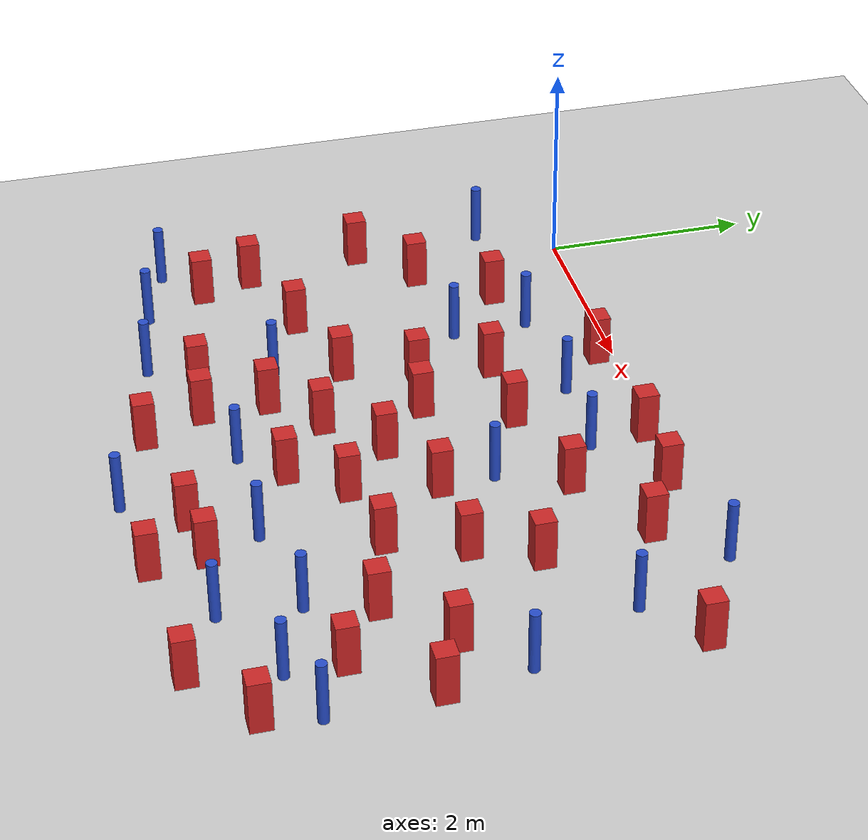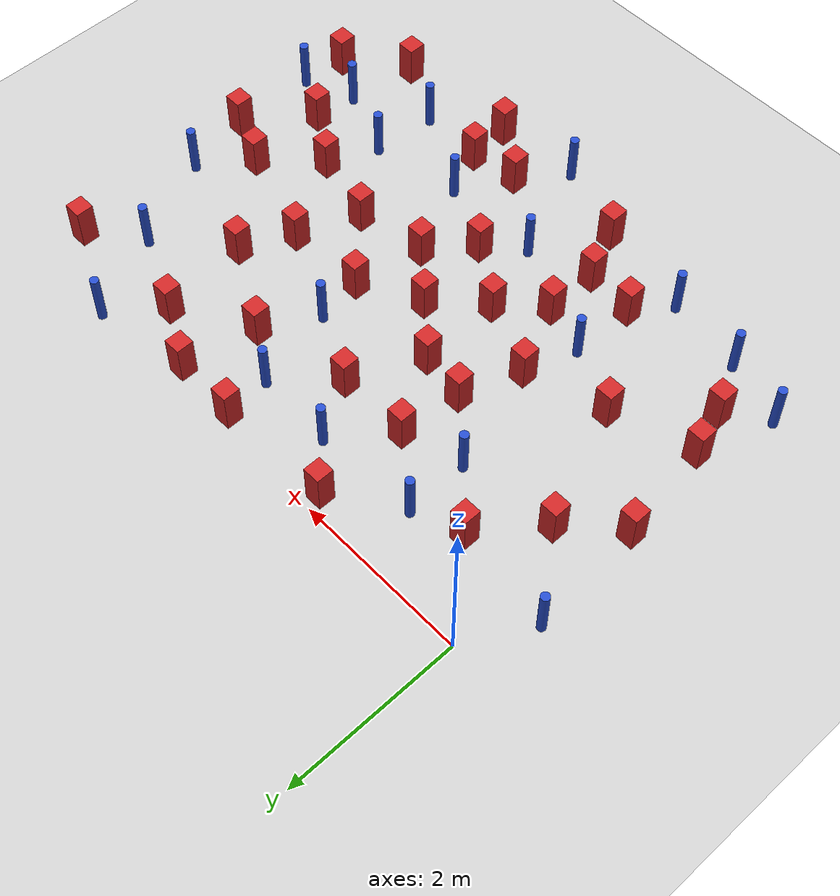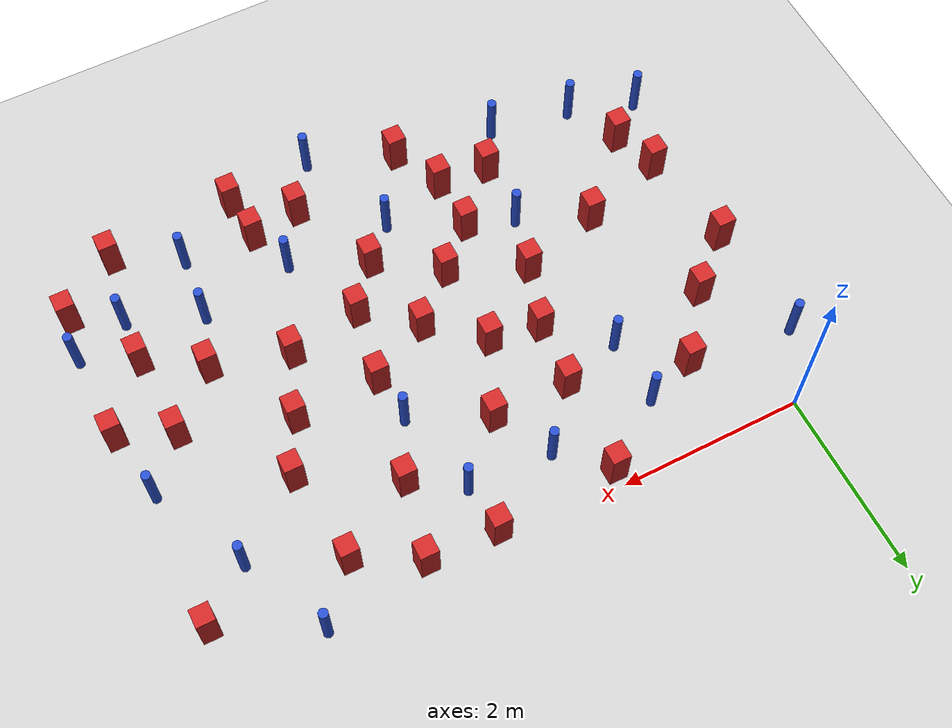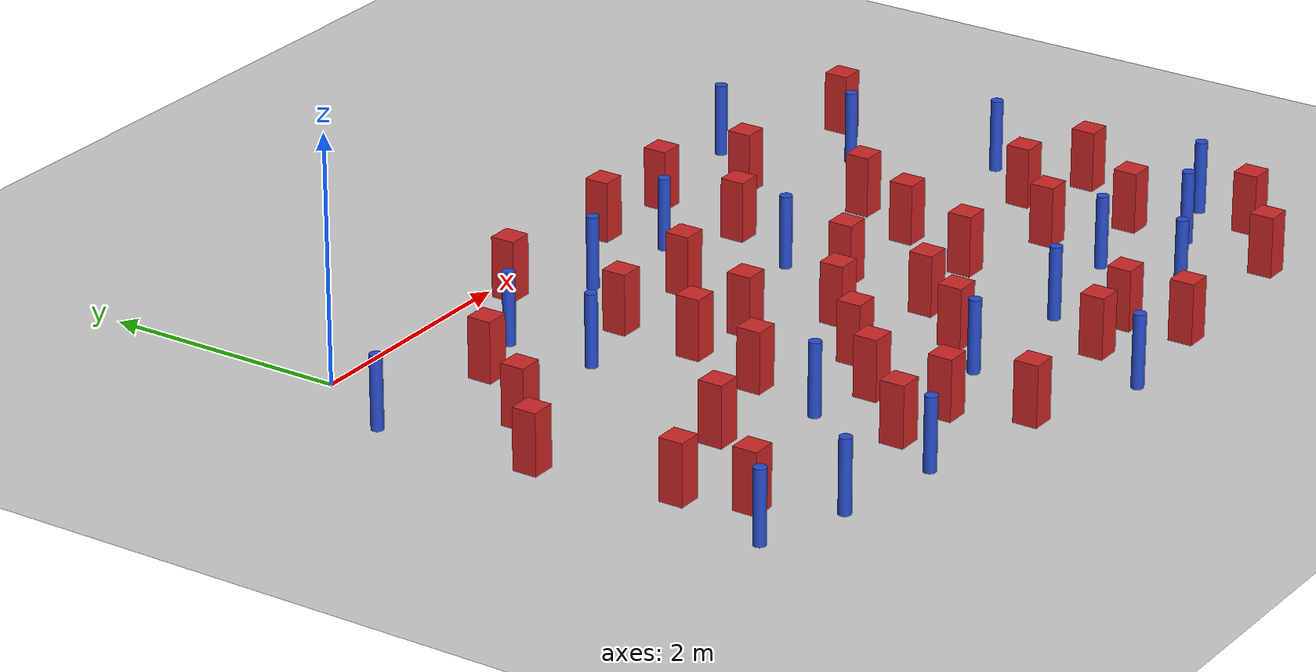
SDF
<sdf version="1.6">
 <world name="default">
  <model name="ground_plane">
   <static>1</static>
   <link name="link">
    <collision name="collision">
     <geometry><plane><normal>0 0 1</normal><size>100 100</size></plane></geometry>
     <surface><friction><ode><mu>100</mu><mu2>50</mu2></ode></friction></surface>
    </collision>
    <visual name="visual">
     <cast_shadows>0</cast_shadows>
     <geometry><plane><normal>0 0 1</normal><size>100 100</size></plane></geometry>
     <material>
      <ambient>1.0 1.0 1.0 1.0</ambient>
      <diffuse>0.8 0.8 0.8 1.0</diffuse>
      <specular>0.01 0.01 0.01 1.000000</specular>
     </material>
    </visual>
   </link>
  </model>
  <model name="NamedLocations">
   <static>true</static>
   <link name="DefaultStart"><pose>8.5 0 0 0 0 3.14</pose></link>
  </model>
  <model name="pole_obstacle8">
   <static>true</static>
   <pose>2.49458877302 -0.618679551614 -2.66029137441e-07 -5.69430205624e-07 6.8412996657e-07 -8.68349370746e-08</pose>
   <link name="link">
    <pose>0 0 0.3 0 -0 0</pose>
    <inertial>
     <mass>1</mass>
     <inertia><ixx>0.145833</ixx><ixy>0</ixy><ixz>0</ixz><iyy>0.145833</iyy><iyz>0</iyz><izz>0.125</izz></inertia>
    </inertial>
    <collision name="collision">
     <geometry><cylinder><radius>0.05</radius><length>.6</length></cylinder></geometry>
    </collision>
    <visual name="visual">
     <geometry><cylinder><radius>0.05</radius><length>.6</length></cylinder></geometry>
     <material>
      <script><name>Gazebo/Blue</name><uri>file://media/materials/scripts/gazebo.material</uri></script>
     </material>
    </visual>
   </link>
  </model>
  <model name="square_post_obstacle7">
   <static>true</static>
   <pose>5.61535277145 -4.75521165374 -7.80171244635e-07 7.17449752808e-06 -5.6639232126e-07 2.2715510512e-05</pose>
   <link name="link">
    <pose>0 0 0.25 0 -0 0</pose>
    <inertial>
     <mass>100</mass>
     <inertia>
      <ixx>0.166667</ixx>
      <ixy>0</ixy>
      <ixz>0</ixz>
      <iyy>0.166667</iyy>
      <iyz>0</iyz>
      <izz>0.166667</izz>
     </inertia>
    </inertial>
    <collision name="collision"><geometry><box><size>.2 .2 .5</size></box></geometry></collision>
    <visual name="visual">
     <geometry><box><size>.2 .2 .5</size></box></geometry>
     <material>
      <script><name>Gazebo/Red</name><uri>file://media/materials/scripts/gazebo.material</uri></script>
     </material>
    </visual>
   </link>
  </model>
  <model name="pole_obstacle11">
   <static>true</static>
   <pose>5.25460463 0.0208689462989 -2.66029137441e-07 -5.69430205622e-07 6.84129966572e-07 -8.68349370728e-08</pose>
   <link name="link">
    <pose>0 0 0.3 0 -0 0</pose>
    <inertial>
     <mass>1</mass>
     <inertia><ixx>0.145833</ixx><ixy>0</ixy><ixz>0</ixz><iyy>0.145833</iyy><iyz>0</iyz><izz>0.125</izz></inertia>
    </inertial>
    <collision name="collision">
     <geometry><cylinder><radius>0.05</radius><length>.6</length></cylinder></geometry>
    </collision>
    <visual name="visual">
     <geometry><cylinder><radius>0.05</radius><length>.6</length></cylinder></geometry>
     <material>
      <script><name>Gazebo/Blue</name><uri>file://media/materials/scripts/gazebo.material</uri></script>
     </material>
    </visual>
   </link>
  </model>
  <model name="pole_obstacle12">
   <static>true</static>
   <pose>5.76693868843 -3.97918718534 -2.66029137441e-07 -5.69430205639e-07 6.84129966552e-07 -8.68349370846e-08</pose>
   <link name="link">
    <pose>0 0 0.3 0 -0 0</pose>
    <inertial>
     <mass>1</mass>
     <inertia><ixx>0.145833</ixx><ixy>0</ixy><ixz>0</ixz><iyy>0.145833</iyy><iyz>0</iyz><izz>0.125</izz></inertia>
    </inertial>
    <collision name="collision">
     <geometry><cylinder><radius>0.05</radius><length>.6</length></cylinder></geometry>
    </collision>
    <visual name="visual">
     <geometry><cylinder><radius>0.05</radius><length>.6</length></cylinder></geometry>
     <material>
      <script><name>Gazebo/Blue</name><uri>file://media/materials/scripts/gazebo.material</uri></script>
     </material>
    </visual>
   </link>
  </model>
  <model name="square_post_obstacle8">
   <static>true</static>
   <pose>-0.32956075323 -2.03776526633 -7.80171244635e-07 7.17449752808e-06 -5.6639232126e-07 2.2715510512e-05</pose>
   <link name="link">
    <pose>0 0 0.25 0 -0 0</pose>
    <inertial>
     <mass>100</mass>
     <inertia>
      <ixx>0.166667</ixx>
      <ixy>0</ixy>
      <ixz>0</ixz>
      <iyy>0.166667</iyy>
      <iyz>0</iyz>
      <izz>0.166667</izz>
     </inertia>
    </inertial>
    <collision name="collision"><geometry><box><size>.2 .2 .5</size></box></geometry></collision>
    <visual name="visual">
     <geometry><box><size>.2 .2 .5</size></box></geometry>
     <material>
      <script><name>Gazebo/Red</name><uri>file://media/materials/scripts/gazebo.material</uri></script>
     </material>
    </visual>
   </link>
  </model>
  <model name="pole_obstacle15">
   <static>true</static>
   <pose>4.98668080263 -3.65906359075 -2.66029137441e-07 -5.69430205643e-07 6.84129966548e-07 -8.68349370881e-08</pose>
   <link name="link">
    <pose>0 0 0.3 0 -0 0</pose>
    <inertial>
     <mass>1</mass>
     <inertia><ixx>0.145833</ixx><ixy>0</ixy><ixz>0</ixz><iyy>0.145833</iyy><iyz>0</iyz><izz>0.125</izz></inertia>
    </inertial>
    <collision name="collision">
     <geometry><cylinder><radius>0.05</radius><length>.6</length></cylinder></geometry>
    </collision>
    <visual name="visual">
     <geometry><cylinder><radius>0.05</radius><length>.6</length></cylinder></geometry>
     <material>
      <script><name>Gazebo/Blue</name><uri>file://media/materials/scripts/gazebo.material</uri></script>
     </material>
    </visual>
   </link>
  </model>
  <model name="square_post_obstacle12">
   <static>true</static>
   <pose>2.04868826181 -3.39985556791 -7.80171244635e-07 7.17449752808e-06 -5.6639232126e-07 2.2715510512e-05</pose>
   <link name="link">
    <pose>0 0 0.25 0 -0 0</pose>
    <inertial>
     <mass>100</mass>
     <inertia>
      <ixx>0.166667</ixx>
      <ixy>0</ixy>
      <ixz>0</ixz>
      <iyy>0.166667</iyy>
      <iyz>0</iyz>
      <izz>0.166667</izz>
     </inertia>
    </inertial>
    <collision name="collision"><geometry><box><size>.2 .2 .5</size></box></geometry></collision>
    <visual name="visual">
     <geometry><box><size>.2 .2 .5</size></box></geometry>
     <material>
      <script><name>Gazebo/Red</name><uri>file://media/materials/scripts/gazebo.material</uri></script>
     </material>
    </visual>
   </link>
  </model>
  <model name="pole_obstacle28">
   <static>true</static>
   <pose>3.24130687064 -4.95791871969 -2.66029137441e-07 -5.69430205635e-07 6.84129966557e-07 -8.68349370832e-08</pose>
   <link name="link">
    <pose>0 0 0.3 0 -0 0</pose>
    <inertial>
     <mass>1</mass>
     <inertia><ixx>0.145833</ixx><ixy>0</ixy><ixz>0</ixz><iyy>0.145833</iyy><iyz>0</iyz><izz>0.125</izz></inertia>
    </inertial>
    <collision name="collision">
     <geometry><cylinder><radius>0.05</radius><length>.6</length></cylinder></geometry>
    </collision>
    <visual name="visual">
     <geometry><cylinder><radius>0.05</radius><length>.6</length></cylinder></geometry>
     <material>
      <script><name>Gazebo/Blue</name><uri>file://media/materials/scripts/gazebo.material</uri></script>
     </material>
    </visual>
   </link>
  </model>
  <model name="square_post_obstacle19">
   <static>true</static>
   <pose>3.16327812657 -3.4459845942 -7.80171244635e-07 7.17449752808e-06 -5.6639232126e-07 2.2715510512e-05</pose>
   <link name="link">
    <pose>0 0 0.25 0 -0 0</pose>
    <inertial>
     <mass>100</mass>
     <inertia>
      <ixx>0.166667</ixx>
      <ixy>0</ixy>
      <ixz>0</ixz>
      <iyy>0.166667</iyy>
      <iyz>0</iyz>
      <izz>0.166667</izz>
     </inertia>
    </inertial>
    <collision name="collision"><geometry><box><size>.2 .2 .5</size></box></geometry></collision>
    <visual name="visual">
     <geometry><box><size>.2 .2 .5</size></box></geometry>
     <material>
      <script><name>Gazebo/Red</name><uri>file://media/materials/scripts/gazebo.material</uri></script>
     </material>
    </visual>
   </link>
  </model>
  <model name="square_post_obstacle21">
   <static>true</static>
   <pose>0.749415163768 -0.872730538576 -7.80171244635e-07 7.17449752808e-06 -5.6639232126e-07 2.2715510512e-05</pose>
   <link name="link">
    <pose>0 0 0.25 0 -0 0</pose>
    <inertial>
     <mass>100</mass>
     <inertia>
      <ixx>0.166667</ixx>
      <ixy>0</ixy>
      <ixz>0</ixz>
      <iyy>0.166667</iyy>
      <iyz>0</iyz>
      <izz>0.166667</izz>
     </inertia>
    </inertial>
    <collision name="collision"><geometry><box><size>.2 .2 .5</size></box></geometry></collision>
    <visual name="visual">
     <geometry><box><size>.2 .2 .5</size></box></geometry>
     <material>
      <script><name>Gazebo/Red</name><uri>file://media/materials/scripts/gazebo.material</uri></script>
     </material>
    </visual>
   </link>
  </model>
  <model name="square_post_obstacle23">
   <static>true</static>
   <pose>3.55069133112 -2.95792109171 -7.80171244635e-07 7.17449752808e-06 -5.6639232126e-07 2.2715510512e-05</pose>
   <link name="link">
    <pose>0 0 0.25 0 -0 0</pose>
    <inertial>
     <mass>100</mass>
     <inertia>
      <ixx>0.166667</ixx>
      <ixy>0</ixy>
      <ixz>0</ixz>
      <iyy>0.166667</iyy>
      <iyz>0</iyz>
      <izz>0.166667</izz>
     </inertia>
    </inertial>
    <collision name="collision"><geometry><box><size>.2 .2 .5</size></box></geometry></collision>
    <visual name="visual">
     <geometry><box><size>.2 .2 .5</size></box></geometry>
     <material>
      <script><name>Gazebo/Red</name><uri>file://media/materials/scripts/gazebo.material</uri></script>
     </material>
    </visual>
   </link>
  </model>
  <model name="square_post_obstacle24">
   <static>true</static>
   <pose>2.0622243989 -4.02546824933 -7.80171244635e-07 7.17449752808e-06 -5.6639232126e-07 2.2715510512e-05</pose>
   <link name="link">
    <pose>0 0 0.25 0 -0 0</pose>
    <inertial>
     <mass>100</mass>
     <inertia>
      <ixx>0.166667</ixx>
      <ixy>0</ixy>
      <ixz>0</ixz>
      <iyy>0.166667</iyy>
      <iyz>0</iyz>
      <izz>0.166667</izz>
     </inertia>
    </inertial>
    <collision name="collision"><geometry><box><size>.2 .2 .5</size></box></geometry></collision>
    <visual name="visual">
     <geometry><box><size>.2 .2 .5</size></box></geometry>
     <material>
      <script><name>Gazebo/Red</name><uri>file://media/materials/scripts/gazebo.material</uri></script>
     </material>
    </visual>
   </link>
  </model>
  <model name="pole_obstacle33">
   <static>true</static>
   <pose>1.32293642868 -1.41221214317 -2.66029137441e-07 -5.69430205631e-07 6.84129966561e-07 -8.68349370801e-08</pose>
   <link name="link">
    <pose>0 0 0.3 0 -0 0</pose>
    <inertial>
     <mass>1</mass>
     <inertia><ixx>0.145833</ixx><ixy>0</ixy><ixz>0</ixz><iyy>0.145833</iyy><iyz>0</iyz><izz>0.125</izz></inertia>
    </inertial>
    <collision name="collision">
     <geometry><cylinder><radius>0.05</radius><length>.6</length></cylinder></geometry>
    </collision>
    <visual name="visual">
     <geometry><cylinder><radius>0.05</radius><length>.6</length></cylinder></geometry>
     <material>
      <script><name>Gazebo/Blue</name><uri>file://media/materials/scripts/gazebo.material</uri></script>
     </material>
    </visual>
   </link>
  </model>
  <model name="pole_obstacle45">
   <static>true</static>
   <pose>1.51649301916 -3.24312812248 -2.66029137441e-07 -5.69430205634e-07 6.84129966558e-07 -8.68349370806e-08</pose>
   <link name="link">
    <pose>0 0 0.3 0 -0 0</pose>
    <inertial>
     <mass>1</mass>
     <inertia><ixx>0.145833</ixx><ixy>0</ixy><ixz>0</ixz><iyy>0.145833</iyy><iyz>0</iyz><izz>0.125</izz></inertia>
    </inertial>
    <collision name="collision">
     <geometry><cylinder><radius>0.05</radius><length>.6</length></cylinder></geometry>
    </collision>
    <visual name="visual">
     <geometry><cylinder><radius>0.05</radius><length>.6</length></cylinder></geometry>
     <material>
      <script><name>Gazebo/Blue</name><uri>file://media/materials/scripts/gazebo.material</uri></script>
     </material>
    </visual>
   </link>
  </model>
  <model name="square_post_obstacle48">
   <static>true</static>
   <pose>3.69604058583 -2.15092324287 -7.80171244635e-07 7.17449752808e-06 -5.6639232126e-07 2.2715510512e-05</pose>
   <link name="link">
    <pose>0 0 0.25 0 -0 0</pose>
    <inertial>
     <mass>100</mass>
     <inertia>
      <ixx>0.166667</ixx>
      <ixy>0</ixy>
      <ixz>0</ixz>
      <iyy>0.166667</iyy>
      <iyz>0</iyz>
      <izz>0.166667</izz>
     </inertia>
    </inertial>
    <collision name="collision"><geometry><box><size>.2 .2 .5</size></box></geometry></collision>
    <visual name="visual">
     <geometry><box><size>.2 .2 .5</size></box></geometry>
     <material>
      <script><name>Gazebo/Red</name><uri>file://media/materials/scripts/gazebo.material</uri></script>
     </material>
    </visual>
   </link>
  </model>
  <model name="square_post_obstacle51">
   <static>true</static>
   <pose>4.19193821958 -4.84243065034 -7.80171244635e-07 7.17449752808e-06 -5.6639232126e-07 2.2715510512e-05</pose>
   <link name="link">
    <pose>0 0 0.25 0 -0 0</pose>
    <inertial>
     <mass>100</mass>
     <inertia>
      <ixx>0.166667</ixx>
      <ixy>0</ixy>
      <ixz>0</ixz>
      <iyy>0.166667</iyy>
      <iyz>0</iyz>
      <izz>0.166667</izz>
     </inertia>
    </inertial>
    <collision name="collision"><geometry><box><size>.2 .2 .5</size></box></geometry></collision>
    <visual name="visual">
     <geometry><box><size>.2 .2 .5</size></box></geometry>
     <material>
      <script><name>Gazebo/Red</name><uri>file://media/materials/scripts/gazebo.material</uri></script>
     </material>
    </visual>
   </link>
  </model>
  <model name="square_post_obstacle54">
   <static>true</static>
   <pose>5.7511329199 -2.51789486885 -7.80171244635e-07 7.17449752808e-06 -5.6639232126e-07 2.2715510512e-05</pose>
   <link name="link">
    <pose>0 0 0.25 0 -0 0</pose>
    <inertial>
     <mass>100</mass>
     <inertia>
      <ixx>0.166667</ixx>
      <ixy>0</ixy>
      <ixz>0</ixz>
      <iyy>0.166667</iyy>
      <iyz>0</iyz>
      <izz>0.166667</izz>
     </inertia>
    </inertial>
    <collision name="collision"><geometry><box><size>.2 .2 .5</size></box></geometry></collision>
    <visual name="visual">
     <geometry><box><size>.2 .2 .5</size></box></geometry>
     <material>
      <script><name>Gazebo/Red</name><uri>file://media/materials/scripts/gazebo.material</uri></script>
     </material>
    </visual>
   </link>
  </model>
  <model name="pole_obstacle72">
   <static>true</static>
   <pose>3.64295440775 -1.63293300448 -2.66029137441e-07 -5.69430205626e-07 6.84129966567e-07 -8.68349370747e-08</pose>
   <link name="link">
    <pose>0 0 0.3 0 -0 0</pose>
    <inertial>
     <mass>1</mass>
     <inertia><ixx>0.145833</ixx><ixy>0</ixy><ixz>0</ixz><iyy>0.145833</iyy><iyz>0</iyz><izz>0.125</izz></inertia>
    </inertial>
    <collision name="collision">
     <geometry><cylinder><radius>0.05</radius><length>.6</length></cylinder></geometry>
    </collision>
    <visual name="visual">
     <geometry><cylinder><radius>0.05</radius><length>.6</length></cylinder></geometry>
     <material>
      <script><name>Gazebo/Blue</name><uri>file://media/materials/scripts/gazebo.material</uri></script>
     </material>
    </visual>
   </link>
  </model>
  <model name="pole_obstacle73">
   <static>true</static>
   <pose>-0.430172688016 -4.02776832806 -2.66029137441e-07 -5.69430205628e-07 6.84129966564e-07 -8.68349370758e-08</pose>
   <link name="link">
    <pose>0 0 0.3 0 -0 0</pose>
    <inertial>
     <mass>1</mass>
     <inertia><ixx>0.145833</ixx><ixy>0</ixy><ixz>0</ixz><iyy>0.145833</iyy><iyz>0</iyz><izz>0.125</izz></inertia>
    </inertial>
    <collision name="collision">
     <geometry><cylinder><radius>0.05</radius><length>.6</length></cylinder></geometry>
    </collision>
    <visual name="visual">
     <geometry><cylinder><radius>0.05</radius><length>.6</length></cylinder></geometry>
     <material>
      <script><name>Gazebo/Blue</name><uri>file://media/materials/scripts/gazebo.material</uri></script>
     </material>
    </visual>
   </link>
  </model>
  <model name="pole_obstacle75">
   <static>true</static>
   <pose>-0.41496611915 -0.730419255599 -2.66029137441e-07 -5.69430205635e-07 6.84129966557e-07 -8.68349370829e-08</pose>
   <link name="link">
    <pose>0 0 0.3 0 -0 0</pose>
    <inertial>
     <mass>1</mass>
     <inertia><ixx>0.145833</ixx><ixy>0</ixy><ixz>0</ixz><iyy>0.145833</iyy><iyz>0</iyz><izz>0.125</izz></inertia>
    </inertial>
    <collision name="collision">
     <geometry><cylinder><radius>0.05</radius><length>.6</length></cylinder></geometry>
    </collision>
    <visual name="visual">
     <geometry><cylinder><radius>0.05</radius><length>.6</length></cylinder></geometry>
     <material>
      <script><name>Gazebo/Blue</name><uri>file://media/materials/scripts/gazebo.material</uri></script>
     </material>
    </visual>
   </link>
  </model>
  <model name="pole_obstacle77">
   <static>true</static>
   <pose>3.9568642843 -3.83935120377 -2.66029137441e-07 -5.69430205656e-07 6.84129966533e-07 -8.6834937102e-08</pose>
   <link name="link">
    <pose>0 0 0.3 0 -0 0</pose>
    <inertial>
     <mass>1</mass>
     <inertia><ixx>0.145833</ixx><ixy>0</ixy><ixz>0</ixz><iyy>0.145833</iyy><iyz>0</iyz><izz>0.125</izz></inertia>
    </inertial>
    <collision name="collision">
     <geometry><cylinder><radius>0.05</radius><length>.6</length></cylinder></geometry>
    </collision>
    <visual name="visual">
     <geometry><cylinder><radius>0.05</radius><length>.6</length></cylinder></geometry>
     <material>
      <script><name>Gazebo/Blue</name><uri>file://media/materials/scripts/gazebo.material</uri></script>
     </material>
    </visual>
   </link>
  </model>
  <model name="pole_obstacle89">
   <static>true</static>
   <pose>2.79653833348 -3.82423718456 -2.66029137441e-07 -5.69430205643e-07 6.84129966548e-07 -8.68349370903e-08</pose>
   <link name="link">
    <pose>0 0 0.3 0 -0 0</pose>
    <inertial>
     <mass>1</mass>
     <inertia><ixx>0.145833</ixx><ixy>0</ixy><ixz>0</ixz><iyy>0.145833</iyy><iyz>0</iyz><izz>0.125</izz></inertia>
    </inertial>
    <collision name="collision">
     <geometry><cylinder><radius>0.05</radius><length>.6</length></cylinder></geometry>
    </collision>
    <visual name="visual">
     <geometry><cylinder><radius>0.05</radius><length>.6</length></cylinder></geometry>
     <material>
      <script><name>Gazebo/Blue</name><uri>file://media/materials/scripts/gazebo.material</uri></script>
     </material>
    </visual>
   </link>
  </model>
  <model name="square_post_obstacle82">
   <static>true</static>
   <pose>4.3499655331 -2.82000378812 -7.80171244635e-07 7.17449752808e-06 -5.6639232126e-07 2.2715510512e-05</pose>
   <link name="link">
    <pose>0 0 0.25 0 -0 0</pose>
    <inertial>
     <mass>100</mass>
     <inertia>
      <ixx>0.166667</ixx>
      <ixy>0</ixy>
      <ixz>0</ixz>
      <iyy>0.166667</iyy>
      <iyz>0</iyz>
      <izz>0.166667</izz>
     </inertia>
    </inertial>
    <collision name="collision"><geometry><box><size>.2 .2 .5</size></box></geometry></collision>
    <visual name="visual">
     <geometry><box><size>.2 .2 .5</size></box></geometry>
     <material>
      <script><name>Gazebo/Red</name><uri>file://media/materials/scripts/gazebo.material</uri></script>
     </material>
    </visual>
   </link>
  </model>
  <model name="square_post_obstacle84">
   <static>true</static>
   <pose>0.777640071251 -2.88531394035 -7.80171244635e-07 7.17449752808e-06 -5.6639232126e-07 2.2715510512e-05</pose>
   <link name="link">
    <pose>0 0 0.25 0 -0 0</pose>
    <inertial>
     <mass>100</mass>
     <inertia>
      <ixx>0.166667</ixx>
      <ixy>0</ixy>
      <ixz>0</ixz>
      <iyy>0.166667</iyy>
      <iyz>0</iyz>
      <izz>0.166667</izz>
     </inertia>
    </inertial>
    <collision name="collision"><geometry><box><size>.2 .2 .5</size></box></geometry></collision>
    <visual name="visual">
     <geometry><box><size>.2 .2 .5</size></box></geometry>
     <material>
      <script><name>Gazebo/Red</name><uri>file://media/materials/scripts/gazebo.material</uri></script>
     </material>
    </visual>
   </link>
  </model>
  <model name="square_post_obstacle87">
   <static>true</static>
   <pose>4.62189170671 -2.12789423194 -7.80171244635e-07 7.17449752808e-06 -5.6639232126e-07 2.2715510512e-05</pose>
   <link name="link">
    <pose>0 0 0.25 0 -0 0</pose>
    <inertial>
     <mass>100</mass>
     <inertia>
      <ixx>0.166667</ixx>
      <ixy>0</ixy>
      <ixz>0</ixz>
      <iyy>0.166667</iyy>
      <iyz>0</iyz>
      <izz>0.166667</izz>
     </inertia>
    </inertial>
    <collision name="collision"><geometry><box><size>.2 .2 .5</size></box></geometry></collision>
    <visual name="visual">
     <geometry><box><size>.2 .2 .5</size></box></geometry>
     <material>
      <script><name>Gazebo/Red</name><uri>file://media/materials/scripts/gazebo.material</uri></script>
     </material>
    </visual>
   </link>
  </model>
  <model name="pole_obstacle98">
   <static>true</static>
   <pose>4.92353672125 -4.38917293834 -2.66029137441e-07 -5.69430205655e-07 6.84129966534e-07 -8.68349370984e-08</pose>
   <link name="link">
    <pose>0 0 0.3 0 -0 0</pose>
    <inertial>
     <mass>1</mass>
     <inertia><ixx>0.145833</ixx><ixy>0</ixy><ixz>0</ixz><iyy>0.145833</iyy><iyz>0</iyz><izz>0.125</izz></inertia>
    </inertial>
    <collision name="collision">
     <geometry><cylinder><radius>0.05</radius><length>.6</length></cylinder></geometry>
    </collision>
    <visual name="visual">
     <geometry><cylinder><radius>0.05</radius><length>.6</length></cylinder></geometry>
     <material>
      <script><name>Gazebo/Blue</name><uri>file://media/materials/scripts/gazebo.material</uri></script>
     </material>
    </visual>
   </link>
  </model>
  <model name="square_post_obstacle93">
   <static>true</static>
   <pose>1.92111579647 -1.93172315736 -7.80171244635e-07 7.17449752808e-06 -5.6639232126e-07 2.2715510512e-05</pose>
   <link name="link">
    <pose>0 0 0.25 0 -0 0</pose>
    <inertial>
     <mass>100</mass>
     <inertia>
      <ixx>0.166667</ixx>
      <ixy>0</ixy>
      <ixz>0</ixz>
      <iyy>0.166667</iyy>
      <iyz>0</iyz>
      <izz>0.166667</izz>
     </inertia>
    </inertial>
    <collision name="collision"><geometry><box><size>.2 .2 .5</size></box></geometry></collision>
    <visual name="visual">
     <geometry><box><size>.2 .2 .5</size></box></geometry>
     <material>
      <script><name>Gazebo/Red</name><uri>file://media/materials/scripts/gazebo.material</uri></script>
     </material>
    </visual>
   </link>
  </model>
  <model name="pole_obstacle103">
   <static>true</static>
   <pose>1.30269540735 -0.68126490774 -2.66029137441e-07 -5.69430205632e-07 6.8412996656e-07 -8.683493708e-08</pose>
   <link name="link">
    <pose>0 0 0.3 0 -0 0</pose>
    <inertial>
     <mass>1</mass>
     <inertia><ixx>0.145833</ixx><ixy>0</ixy><ixz>0</ixz><iyy>0.145833</iyy><iyz>0</iyz><izz>0.125</izz></inertia>
    </inertial>
    <collision name="collision">
     <geometry><cylinder><radius>0.05</radius><length>.6</length></cylinder></geometry>
    </collision>
    <visual name="visual">
     <geometry><cylinder><radius>0.05</radius><length>.6</length></cylinder></geometry>
     <material>
      <script><name>Gazebo/Blue</name><uri>file://media/materials/scripts/gazebo.material</uri></script>
     </material>
    </visual>
   </link>
  </model>
  <model name="square_post_obstacle101">
   <static>true</static>
   <pose>1.69017955664 -2.61866560632 -7.80171244635e-07 7.17449752808e-06 -5.6639232126e-07 2.2715510512e-05</pose>
   <link name="link">
    <pose>0 0 0.25 0 -0 0</pose>
    <inertial>
     <mass>100</mass>
     <inertia>
      <ixx>0.166667</ixx>
      <ixy>0</ixy>
      <ixz>0</ixz>
      <iyy>0.166667</iyy>
      <iyz>0</iyz>
      <izz>0.166667</izz>
     </inertia>
    </inertial>
    <collision name="collision"><geometry><box><size>.2 .2 .5</size></box></geometry></collision>
    <visual name="visual">
     <geometry><box><size>.2 .2 .5</size></box></geometry>
     <material>
      <script><name>Gazebo/Red</name><uri>file://media/materials/scripts/gazebo.material</uri></script>
     </material>
    </visual>
   </link>
  </model>
  <model name="pole_obstacle108">
   <static>true</static>
   <pose>6.20049462685 -2.00107443676 -2.66029137441e-07 -5.69430205633e-07 6.84129966559e-07 -8.68349370805e-08</pose>
   <link name="link">
    <pose>0 0 0.3 0 -0 0</pose>
    <inertial>
     <mass>1</mass>
     <inertia><ixx>0.145833</ixx><ixy>0</ixy><ixz>0</ixz><iyy>0.145833</iyy><iyz>0</iyz><izz>0.125</izz></inertia>
    </inertial>
    <collision name="collision">
     <geometry><cylinder><radius>0.05</radius><length>.6</length></cylinder></geometry>
    </collision>
    <visual name="visual">
     <geometry><cylinder><radius>0.05</radius><length>.6</length></cylinder></geometry>
     <material>
      <script><name>Gazebo/Blue</name><uri>file://media/materials/scripts/gazebo.material</uri></script>
     </material>
    </visual>
   </link>
  </model>
  <model name="square_post_obstacle108">
   <static>true</static>
   <pose>6.3261435181 -2.77736961305 -7.80171244635e-07 7.17449752808e-06 -5.6639232126e-07 2.2715510512e-05</pose>
   <link name="link">
    <pose>0 0 0.25 0 -0 0</pose>
    <inertial>
     <mass>100</mass>
     <inertia>
      <ixx>0.166667</ixx>
      <ixy>0</ixy>
      <ixz>0</ixz>
      <iyy>0.166667</iyy>
      <iyz>0</iyz>
      <izz>0.166667</izz>
     </inertia>
    </inertial>
    <collision name="collision"><geometry><box><size>.2 .2 .5</size></box></geometry></collision>
    <visual name="visual">
     <geometry><box><size>.2 .2 .5</size></box></geometry>
     <material>
      <script><name>Gazebo/Red</name><uri>file://media/materials/scripts/gazebo.material</uri></script>
     </material>
    </visual>
   </link>
  </model>
  <model name="square_post_obstacle114">
   <static>true</static>
   <pose>2.49785249176 -2.97539767144 -7.80171244635e-07 7.17449752808e-06 -5.6639232126e-07 2.2715510512e-05</pose>
   <link name="link">
    <pose>0 0 0.25 0 -0 0</pose>
    <inertial>
     <mass>100</mass>
     <inertia>
      <ixx>0.166667</ixx>
      <ixy>0</ixy>
      <ixz>0</ixz>
      <iyy>0.166667</iyy>
      <iyz>0</iyz>
      <izz>0.166667</izz>
     </inertia>
    </inertial>
    <collision name="collision"><geometry><box><size>.2 .2 .5</size></box></geometry></collision>
    <visual name="visual">
     <geometry><box><size>.2 .2 .5</size></box></geometry>
     <material>
      <script><name>Gazebo/Red</name><uri>file://media/materials/scripts/gazebo.material</uri></script>
     </material>
    </visual>
   </link>
  </model>
  <model name="square_post_obstacle118">
   <static>true</static>
   <pose>1.99223861067 -1.22168655738 -7.80171244635e-07 7.17449752808e-06 -5.6639232126e-07 2.2715510512e-05</pose>
   <link name="link">
    <pose>0 0 0.25 0 -0 0</pose>
    <inertial>
     <mass>100</mass>
     <inertia>
      <ixx>0.166667</ixx>
      <ixy>0</ixy>
      <ixz>0</ixz>
      <iyy>0.166667</iyy>
      <iyz>0</iyz>
      <izz>0.166667</izz>
     </inertia>
    </inertial>
    <collision name="collision"><geometry><box><size>.2 .2 .5</size></box></geometry></collision>
    <visual name="visual">
     <geometry><box><size>.2 .2 .5</size></box></geometry>
     <material>
      <script><name>Gazebo/Red</name><uri>file://media/materials/scripts/gazebo.material</uri></script>
     </material>
    </visual>
   </link>
  </model>
  <model name="square_post_obstacle120">
   <static>true</static>
   <pose>5.18434533406 -3.06299572745 -7.80171244635e-07 7.17449752808e-06 -5.6639232126e-07 2.2715510512e-05</pose>
   <link name="link">
    <pose>0 0 0.25 0 -0 0</pose>
    <inertial>
     <mass>100</mass>
     <inertia>
      <ixx>0.166667</ixx>
      <ixy>0</ixy>
      <ixz>0</ixz>
      <iyy>0.166667</iyy>
      <iyz>0</iyz>
      <izz>0.166667</izz>
     </inertia>
    </inertial>
    <collision name="collision"><geometry><box><size>.2 .2 .5</size></box></geometry></collision>
    <visual name="visual">
     <geometry><box><size>.2 .2 .5</size></box></geometry>
     <material>
      <script><name>Gazebo/Red</name><uri>file://media/materials/scripts/gazebo.material</uri></script>
     </material>
    </visual>
   </link>
  </model>
  <model name="pole_obstacle121">
   <static>true</static>
   <pose>6.35461256083 -3.77268343659 -2.66029137441e-07 -5.69430205643e-07 6.84129966548e-07 -8.68349370881e-08</pose>
   <link name="link">
    <pose>0 0 0.3 0 -0 0</pose>
    <inertial>
     <mass>1</mass>
     <inertia><ixx>0.145833</ixx><ixy>0</ixy><ixz>0</ixz><iyy>0.145833</iyy><iyz>0</iyz><izz>0.125</izz></inertia>
    </inertial>
    <collision name="collision">
     <geometry><cylinder><radius>0.05</radius><length>.6</length></cylinder></geometry>
    </collision>
    <visual name="visual">
     <geometry><cylinder><radius>0.05</radius><length>.6</length></cylinder></geometry>
     <material>
      <script><name>Gazebo/Blue</name><uri>file://media/materials/scripts/gazebo.material</uri></script>
     </material>
    </visual>
   </link>
  </model>
  <model name="pole_obstacle123">
   <static>true</static>
   <pose>3.41301134414 -0.660502078795 -2.66029137441e-07 -5.69430205624e-07 6.8412996657e-07 -8.68349370746e-08</pose>
   <link name="link">
    <pose>0 0 0.3 0 -0 0</pose>
    <inertial>
     <mass>1</mass>
     <inertia><ixx>0.145833</ixx><ixy>0</ixy><ixz>0</ixz><iyy>0.145833</iyy><iyz>0</iyz><izz>0.125</izz></inertia>
    </inertial>
    <collision name="collision">
     <geometry><cylinder><radius>0.05</radius><length>.6</length></cylinder></geometry>
    </collision>
    <visual name="visual">
     <geometry><cylinder><radius>0.05</radius><length>.6</length></cylinder></geometry>
     <material>
      <script><name>Gazebo/Blue</name><uri>file://media/materials/scripts/gazebo.material</uri></script>
     </material>
    </visual>
   </link>
  </model>
  <model name="square_post_obstacle127">
   <static>true</static>
   <pose>2.03002223787 -0.174668996792 -7.80171244635e-07 7.17449752808e-06 -5.6639232126e-07 2.2715510512e-05</pose>
   <link name="link">
    <pose>0 0 0.25 0 -0 0</pose>
    <inertial>
     <mass>100</mass>
     <inertia>
      <ixx>0.166667</ixx>
      <ixy>0</ixy>
      <ixz>0</ixz>
      <iyy>0.166667</iyy>
      <iyz>0</iyz>
      <izz>0.166667</izz>
     </inertia>
    </inertial>
    <collision name="collision"><geometry><box><size>.2 .2 .5</size></box></geometry></collision>
    <visual name="visual">
     <geometry><box><size>.2 .2 .5</size></box></geometry>
     <material>
      <script><name>Gazebo/Red</name><uri>file://media/materials/scripts/gazebo.material</uri></script>
     </material>
    </visual>
   </link>
  </model>
  <model name="square_post_obstacle130">
   <static>true</static>
   <pose>5.78644322665 -3.46256348749 -7.80171244635e-07 7.17449752808e-06 -5.6639232126e-07 2.2715510512e-05</pose>
   <link name="link">
    <pose>0 0 0.25 0 -0 0</pose>
    <inertial>
     <mass>100</mass>
     <inertia>
      <ixx>0.166667</ixx>
      <ixy>0</ixy>
      <ixz>0</ixz>
      <iyy>0.166667</iyy>
      <iyz>0</iyz>
      <izz>0.166667</izz>
     </inertia>
    </inertial>
    <collision name="collision"><geometry><box><size>.2 .2 .5</size></box></geometry></collision>
    <visual name="visual">
     <geometry><box><size>.2 .2 .5</size></box></geometry>
     <material>
      <script><name>Gazebo/Red</name><uri>file://media/materials/scripts/gazebo.material</uri></script>
     </material>
    </visual>
   </link>
  </model>
  <model name="square_post_obstacle149">
   <static>true</static>
   <pose>4.12219309062 -0.160701687416 -7.80171244635e-07 7.17449752808e-06 -5.6639232126e-07 2.2715510512e-05</pose>
   <link name="link">
    <pose>0 0 0.25 0 -0 0</pose>
    <inertial>
     <mass>100</mass>
     <inertia>
      <ixx>0.166667</ixx>
      <ixy>0</ixy>
      <ixz>0</ixz>
      <iyy>0.166667</iyy>
      <iyz>0</iyz>
      <izz>0.166667</izz>
     </inertia>
    </inertial>
    <collision name="collision"><geometry><box><size>.2 .2 .5</size></box></geometry></collision>
    <visual name="visual">
     <geometry><box><size>.2 .2 .5</size></box></geometry>
     <material>
      <script><name>Gazebo/Red</name><uri>file://media/materials/scripts/gazebo.material</uri></script>
     </material>
    </visual>
   </link>
  </model>
  <model name="square_post_obstacle151">
   <static>true</static>
   <pose>6.24674834492 -0.509543445669 -7.80171244635e-07 7.17449752808e-06 -5.6639232126e-07 2.2715510512e-05</pose>
   <link name="link">
    <pose>0 0 0.25 0 -0 0</pose>
    <inertial>
     <mass>100</mass>
     <inertia>
      <ixx>0.166667</ixx>
      <ixy>0</ixy>
      <ixz>0</ixz>
      <iyy>0.166667</iyy>
      <iyz>0</iyz>
      <izz>0.166667</izz>
     </inertia>
    </inertial>
    <collision name="collision"><geometry><box><size>.2 .2 .5</size></box></geometry></collision>
    <visual name="visual">
     <geometry><box><size>.2 .2 .5</size></box></geometry>
     <material>
      <script><name>Gazebo/Red</name><uri>file://media/materials/scripts/gazebo.material</uri></script>
     </material>
    </visual>
   </link>
  </model>
  <model name="square_post_obstacle157">
   <static>true</static>
   <pose>-0.16072621772 -3.17171247174 -7.80171244635e-07 7.17449752808e-06 -5.6639232126e-07 2.2715510512e-05</pose>
   <link name="link">
    <pose>0 0 0.25 0 -0 0</pose>
    <inertial>
     <mass>100</mass>
     <inertia>
      <ixx>0.166667</ixx>
      <ixy>0</ixy>
      <ixz>0</ixz>
      <iyy>0.166667</iyy>
      <iyz>0</iyz>
      <izz>0.166667</izz>
     </inertia>
    </inertial>
    <collision name="collision"><geometry><box><size>.2 .2 .5</size></box></geometry></collision>
    <visual name="visual">
     <geometry><box><size>.2 .2 .5</size></box></geometry>
     <material>
      <script><name>Gazebo/Red</name><uri>file://media/materials/scripts/gazebo.material</uri></script>
     </material>
    </visual>
   </link>
  </model>
  <model name="square_post_obstacle163">
   <static>true</static>
   <pose>0.22728077419 -1.54177295757 -7.80171244635e-07 7.17449752808e-06 -5.6639232126e-07 2.2715510512e-05</pose>
   <link name="link">
    <pose>0 0 0.25 0 -0 0</pose>
    <inertial>
     <mass>100</mass>
     <inertia>
      <ixx>0.166667</ixx>
      <ixy>0</ixy>
      <ixz>0</ixz>
      <iyy>0.166667</iyy>
      <iyz>0</iyz>
      <izz>0.166667</izz>
     </inertia>
    </inertial>
    <collision name="collision"><geometry><box><size>.2 .2 .5</size></box></geometry></collision>
    <visual name="visual">
     <geometry><box><size>.2 .2 .5</size></box></geometry>
     <material>
      <script><name>Gazebo/Red</name><uri>file://media/materials/scripts/gazebo.material</uri></script>
     </material>
    </visual>
   </link>
  </model>
  <model name="square_post_obstacle166">
   <static>true</static>
   <pose>3.01811277451 -2.49814364549 -7.80171244635e-07 7.17449752808e-06 -5.6639232126e-07 2.2715510512e-05</pose>
   <link name="link">
    <pose>0 0 0.25 0 -0 0</pose>
    <inertial>
     <mass>100</mass>
     <inertia>
      <ixx>0.166667</ixx>
      <ixy>0</ixy>
      <ixz>0</ixz>
      <iyy>0.166667</iyy>
      <iyz>0</iyz>
      <izz>0.166667</izz>
     </inertia>
    </inertial>
    <collision name="collision"><geometry><box><size>.2 .2 .5</size></box></geometry></collision>
    <visual name="visual">
     <geometry><box><size>.2 .2 .5</size></box></geometry>
     <material>
      <script><name>Gazebo/Red</name><uri>file://media/materials/scripts/gazebo.material</uri></script>
     </material>
    </visual>
   </link>
  </model>
  <model name="pole_obstacle169">
   <static>true</static>
   <pose>5.69718957267 -0.943016598296 -2.66029137441e-07 -5.69430205635e-07 6.84129966557e-07 -8.68349370823e-08</pose>
   <link name="link">
    <pose>0 0 0.3 0 -0 0</pose>
    <inertial>
     <mass>1</mass>
     <inertia><ixx>0.145833</ixx><ixy>0</ixy><ixz>0</ixz><iyy>0.145833</iyy><iyz>0</iyz><izz>0.125</izz></inertia>
    </inertial>
    <collision name="collision">
     <geometry><cylinder><radius>0.05</radius><length>.6</length></cylinder></geometry>
    </collision>
    <visual name="visual">
     <geometry><cylinder><radius>0.05</radius><length>.6</length></cylinder></geometry>
     <material>
      <script><name>Gazebo/Blue</name><uri>file://media/materials/scripts/gazebo.material</uri></script>
     </material>
    </visual>
   </link>
  </model>
  <model name="square_post_obstacle170">
   <static>true</static>
   <pose>2.31988660587 -4.59488067569 -7.80171244635e-07 7.17449752808e-06 -5.6639232126e-07 2.2715510512e-05</pose>
   <link name="link">
    <pose>0 0 0.25 0 -0 0</pose>
    <inertial>
     <mass>100</mass>
     <inertia>
      <ixx>0.166667</ixx>
      <ixy>0</ixy>
      <ixz>0</ixz>
      <iyy>0.166667</iyy>
      <iyz>0</iyz>
      <izz>0.166667</izz>
     </inertia>
    </inertial>
    <collision name="collision"><geometry><box><size>.2 .2 .5</size></box></geometry></collision>
    <visual name="visual">
     <geometry><box><size>.2 .2 .5</size></box></geometry>
     <material>
      <script><name>Gazebo/Red</name><uri>file://media/materials/scripts/gazebo.material</uri></script>
     </material>
    </visual>
   </link>
  </model>
  <model name="square_post_obstacle174">
   <static>true</static>
   <pose>3.94084389658 -1.00480020249 -7.80171244635e-07 7.17449752808e-06 -5.6639232126e-07 2.2715510512e-05</pose>
   <link name="link">
    <pose>0 0 0.25 0 -0 0</pose>
    <inertial>
     <mass>100</mass>
     <inertia>
      <ixx>0.166667</ixx>
      <ixy>0</ixy>
      <ixz>0</ixz>
      <iyy>0.166667</iyy>
      <iyz>0</iyz>
      <izz>0.166667</izz>
     </inertia>
    </inertial>
    <collision name="collision"><geometry><box><size>.2 .2 .5</size></box></geometry></collision>
    <visual name="visual">
     <geometry><box><size>.2 .2 .5</size></box></geometry>
     <material>
      <script><name>Gazebo/Red</name><uri>file://media/materials/scripts/gazebo.material</uri></script>
     </material>
    </visual>
   </link>
  </model>
  <model name="square_post_obstacle178">
   <static>true</static>
   <pose>2.83558085116 -1.22754276904 -7.80171244635e-07 7.17449752808e-06 -5.6639232126e-07 2.2715510512e-05</pose>
   <link name="link">
    <pose>0 0 0.25 0 -0 0</pose>
    <inertial>
     <mass>100</mass>
     <inertia>
      <ixx>0.166667</ixx>
      <ixy>0</ixy>
      <ixz>0</ixz>
      <iyy>0.166667</iyy>
      <iyz>0</iyz>
      <izz>0.166667</izz>
     </inertia>
    </inertial>
    <collision name="collision"><geometry><box><size>.2 .2 .5</size></box></geometry></collision>
    <visual name="visual">
     <geometry><box><size>.2 .2 .5</size></box></geometry>
     <material>
      <script><name>Gazebo/Red</name><uri>file://media/materials/scripts/gazebo.material</uri></script>
     </material>
    </visual>
   </link>
  </model>
  <model name="square_post_obstacle183">
   <static>true</static>
   <pose>4.7795153541 -0.523404854094 -7.80171244635e-07 7.17449752808e-06 -5.6639232126e-07 2.2715510512e-05</pose>
   <link name="link">
    <pose>0 0 0.25 0 -0 0</pose>
    <inertial>
     <mass>100</mass>
     <inertia>
      <ixx>0.166667</ixx>
      <ixy>0</ixy>
      <ixz>0</ixz>
      <iyy>0.166667</iyy>
      <iyz>0</iyz>
      <izz>0.166667</izz>
     </inertia>
    </inertial>
    <collision name="collision"><geometry><box><size>.2 .2 .5</size></box></geometry></collision>
    <visual name="visual">
     <geometry><box><size>.2 .2 .5</size></box></geometry>
     <material>
      <script><name>Gazebo/Red</name><uri>file://media/materials/scripts/gazebo.material</uri></script>
     </material>
    </visual>
   </link>
  </model>
  <model name="square_post_obstacle199">
   <static>true</static>
   <pose>1.49613628113 -3.96887338446 -7.80171244635e-07 7.17449752808e-06 -5.6639232126e-07 2.2715510512e-05</pose>
   <link name="link">
    <pose>0 0 0.25 0 -0 0</pose>
    <inertial>
     <mass>100</mass>
     <inertia>
      <ixx>0.166667</ixx>
      <ixy>0</ixy>
      <ixz>0</ixz>
      <iyy>0.166667</iyy>
      <iyz>0</iyz>
      <izz>0.166667</izz>
     </inertia>
    </inertial>
    <collision name="collision"><geometry><box><size>.2 .2 .5</size></box></geometry></collision>
    <visual name="visual">
     <geometry><box><size>.2 .2 .5</size></box></geometry>
     <material>
      <script><name>Gazebo/Red</name><uri>file://media/materials/scripts/gazebo.material</uri></script>
     </material>
    </visual>
   </link>
  </model>
  <model name="square_post_obstacle204">
   <static>true</static>
   <pose>3.35697885133 -0.128015539262 -7.80171244635e-07 7.17449752808e-06 -5.6639232126e-07 2.2715510512e-05</pose>
   <link name="link">
    <pose>0 0 0.25 0 -0 0</pose>
    <inertial>
     <mass>100</mass>
     <inertia>
      <ixx>0.166667</ixx>
      <ixy>0</ixy>
      <ixz>0</ixz>
      <iyy>0.166667</iyy>
      <iyz>0</iyz>
      <izz>0.166667</izz>
     </inertia>
    </inertial>
    <collision name="collision"><geometry><box><size>.2 .2 .5</size></box></geometry></collision>
    <visual name="visual">
     <geometry><box><size>.2 .2 .5</size></box></geometry>
     <material>
      <script><name>Gazebo/Red</name><uri>file://media/materials/scripts/gazebo.material</uri></script>
     </material>
    </visual>
   </link>
  </model>
  <model name="pole_obstacle203">
   <static>true</static>
   <pose>1.20456252701 -4.41159997579 -2.66029137441e-07 -5.69430205635e-07 6.84129966557e-07 -8.68349370822e-08</pose>
   <link name="link">
    <pose>0 0 0.3 0 -0 0</pose>
    <inertial>
     <mass>1</mass>
     <inertia><ixx>0.145833</ixx><ixy>0</ixy><ixz>0</ixz><iyy>0.145833</iyy><iyz>0</iyz><izz>0.125</izz></inertia>
    </inertial>
    <collision name="collision">
     <geometry><cylinder><radius>0.05</radius><length>.6</length></cylinder></geometry>
    </collision>
    <visual name="visual">
     <geometry><cylinder><radius>0.05</radius><length>.6</length></cylinder></geometry>
     <material>
      <script><name>Gazebo/Blue</name><uri>file://media/materials/scripts/gazebo.material</uri></script>
     </material>
    </visual>
   </link>
  </model>
  <model name="square_post_obstacle211">
   <static>true</static>
   <pose>2.47009671701 -2.02523056684 -7.80171244635e-07 7.17449752808e-06 -5.6639232126e-07 2.2715510512e-05</pose>
   <link name="link">
    <pose>0 0 0.25 0 -0 0</pose>
    <inertial>
     <mass>100</mass>
     <inertia>
      <ixx>0.166667</ixx>
      <ixy>0</ixy>
      <ixz>0</ixz>
      <iyy>0.166667</iyy>
      <iyz>0</iyz>
      <izz>0.166667</izz>
     </inertia>
    </inertial>
    <collision name="collision"><geometry><box><size>.2 .2 .5</size></box></geometry></collision>
    <visual name="visual">
     <geometry><box><size>.2 .2 .5</size></box></geometry>
     <material>
      <script><name>Gazebo/Red</name><uri>file://media/materials/scripts/gazebo.material</uri></script>
     </material>
    </visual>
   </link>
  </model>
  <model name="square_post_obstacle215">
   <static>true</static>
   <pose>6.26272006924 -4.26733972942 -7.80171244635e-07 7.17449752808e-06 -5.6639232126e-07 2.2715510512e-05</pose>
   <link name="link">
    <pose>0 0 0.25 0 -0 0</pose>
    <inertial>
     <mass>100</mass>
     <inertia>
      <ixx>0.166667</ixx>
      <ixy>0</ixy>
      <ixz>0</ixz>
      <iyy>0.166667</iyy>
      <iyz>0</iyz>
      <izz>0.166667</izz>
     </inertia>
    </inertial>
    <collision name="collision"><geometry><box><size>.2 .2 .5</size></box></geometry></collision>
    <visual name="visual">
     <geometry><box><size>.2 .2 .5</size></box></geometry>
     <material>
      <script><name>Gazebo/Red</name><uri>file://media/materials/scripts/gazebo.material</uri></script>
     </material>
    </visual>
   </link>
  </model>
  <model name="pole_obstacle216">
   <static>true</static>
   <pose>0.300605728232 -4.26374008803 -2.66029137441e-07 -5.69430205632e-07 6.84129966561e-07 -8.68349370786e-08</pose>
   <link name="link">
    <pose>0 0 0.3 0 -0 0</pose>
    <inertial>
     <mass>1</mass>
     <inertia><ixx>0.145833</ixx><ixy>0</ixy><ixz>0</ixz><iyy>0.145833</iyy><iyz>0</iyz><izz>0.125</izz></inertia>
    </inertial>
    <collision name="collision">
     <geometry><cylinder><radius>0.05</radius><length>.6</length></cylinder></geometry>
    </collision>
    <visual name="visual">
     <geometry><cylinder><radius>0.05</radius><length>.6</length></cylinder></geometry>
     <material>
      <script><name>Gazebo/Blue</name><uri>file://media/materials/scripts/gazebo.material</uri></script>
     </material>
    </visual>
   </link>
  </model>
  <model name="square_post_obstacle218">
   <static>true</static>
   <pose>3.59898004101 -4.41270002831 -7.80171244635e-07 7.17449752808e-06 -5.6639232126e-07 2.2715510512e-05</pose>
   <link name="link">
    <pose>0 0 0.25 0 -0 0</pose>
    <inertial>
     <mass>100</mass>
     <inertia>
      <ixx>0.166667</ixx>
      <ixy>0</ixy>
      <ixz>0</ixz>
      <iyy>0.166667</iyy>
      <iyz>0</iyz>
      <izz>0.166667</izz>
     </inertia>
    </inertial>
    <collision name="collision"><geometry><box><size>.2 .2 .5</size></box></geometry></collision>
    <visual name="visual">
     <geometry><box><size>.2 .2 .5</size></box></geometry>
     <material>
      <script><name>Gazebo/Red</name><uri>file://media/materials/scripts/gazebo.material</uri></script>
     </material>
    </visual>
   </link>
  </model>
  <model name="square_post_obstacle227">
   <static>true</static>
   <pose>4.90076004101 -1.55387002831 -7.80171244635e-07 7.17449752808e-06 -5.6639232126e-07 2.2715510512e-05</pose>
   <link name="link">
    <pose>0 0 0.25 0 -0 0</pose>
    <inertial>
     <mass>100</mass>
     <inertia>
      <ixx>0.166667</ixx>
      <ixy>0</ixy>
      <ixz>0</ixz>
      <iyy>0.166667</iyy>
      <iyz>0</iyz>
      <izz>0.166667</izz>
     </inertia>
    </inertial>
    <collision name="collision"><geometry><box><size>.2 .2 .5</size></box></geometry></collision>
    <visual name="visual">
     <geometry><box><size>.2 .2 .5</size></box></geometry>
     <material>
      <script><name>Gazebo/Red</name><uri>file://media/materials/scripts/gazebo.material</uri></script>
     </material>
    </visual>
   </link>
  </model>
  <model name="square_post_obstacle228">
   <static>true</static>
   <pose>0.00746104101191 -3.68049002831 -7.80171244635e-07 7.17449752808e-06 -5.6639232126e-07 2.2715510512e-05</pose>
   <link name="link">
    <pose>0 0 0.25 0 -0 0</pose>
    <inertial>
     <mass>100</mass>
     <inertia>
      <ixx>0.166667</ixx>
      <ixy>0</ixy>
      <ixz>0</ixz>
      <iyy>0.166667</iyy>
      <iyz>0</iyz>
      <izz>0.166667</izz>
     </inertia>
    </inertial>
    <collision name="collision"><geometry><box><size>.2 .2 .5</size></box></geometry></collision>
    <visual name="visual">
     <geometry><box><size>.2 .2 .5</size></box></geometry>
     <material>
      <script><name>Gazebo/Red</name><uri>file://media/materials/scripts/gazebo.material</uri></script>
     </material>
    </visual>
   </link>
  </model>
  <model name="square_post_obstacle238">
   <static>true</static>
   <pose>4.14733004101 -4.33336002831 -7.80171244635e-07 7.17449752808e-06 -5.6639232126e-07 2.2715510512e-05</pose>
   <link name="link">
    <pose>0 0 0.25 0 -0 0</pose>
    <inertial>
     <mass>100</mass>
     <inertia>
      <ixx>0.166667</ixx>
      <ixy>0</ixy>
      <ixz>0</ixz>
      <iyy>0.166667</iyy>
      <iyz>0</iyz>
      <izz>0.166667</izz>
     </inertia>
    </inertial>
    <collision name="collision"><geometry><box><size>.2 .2 .5</size></box></geometry></collision>
    <visual name="visual">
     <geometry><box><size>.2 .2 .5</size></box></geometry>
     <material>
      <script><name>Gazebo/Red</name><uri>file://media/materials/scripts/gazebo.material</uri></script>
     </material>
    </visual>
   </link>
  </model>
 </world>
</sdf>
